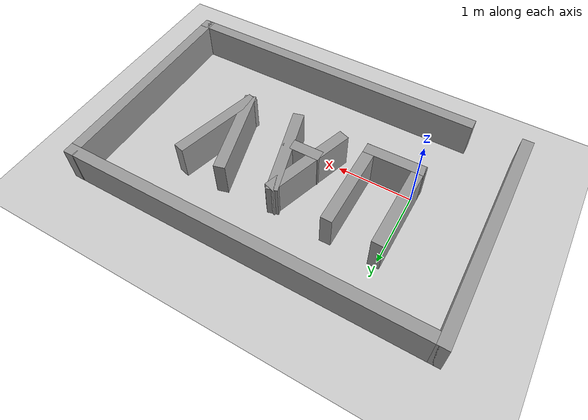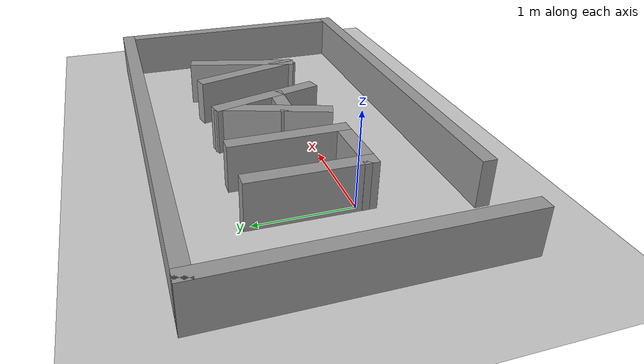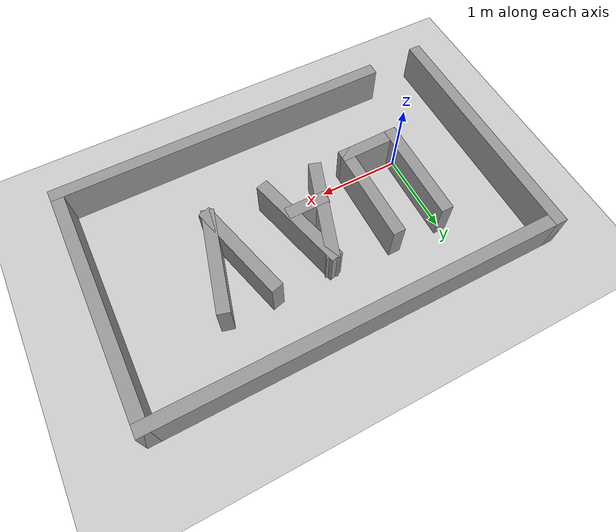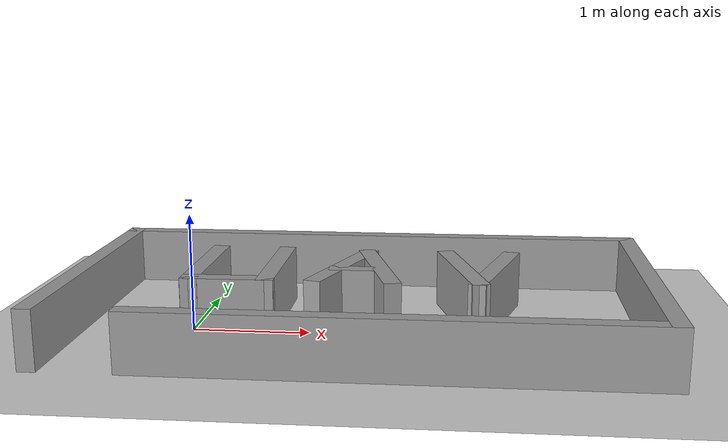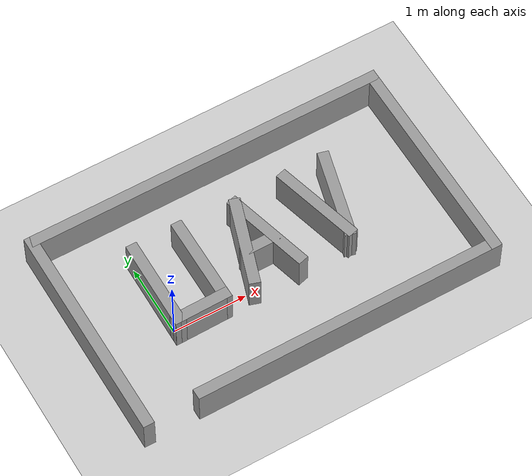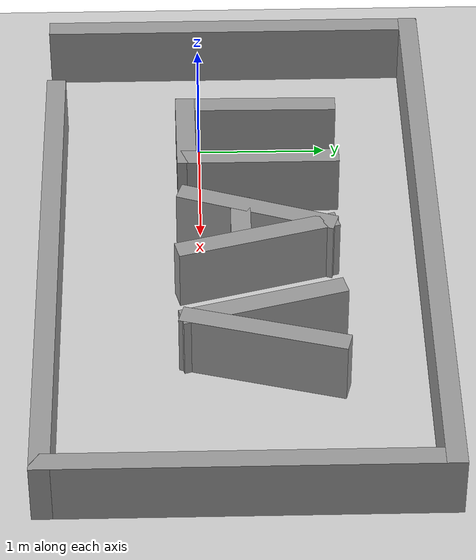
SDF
<sdf version="1.7">
 <world name="default">
  <light name="sun" type="directional">
   <pose>0 0 10 0 -0 0</pose>
   <diffuse>0.8 0.8 0.8 1</diffuse>
   <specular>0.2 0.2 0.2 1</specular>
   <attenuation>
    <range>1000</range>
    <constant>0.9</constant>
    <linear>0.01</linear>
    <quadratic>0.001</quadratic>
   </attenuation>
   <direction>-0.5 0.1 -0.9</direction>
   <spot><inner_angle>0</inner_angle><outer_angle>0</outer_angle><falloff>0</falloff></spot>
  </light>
  <model name="ground_plane">
   <static>1</static>
   <link name="link">
    <collision name="collision">
     <geometry><plane><normal>0 0 1</normal><size>100 100</size></plane></geometry>
     <surface>
      <contact><collide_bitmask>65535</collide_bitmask></contact>
      <friction><ode><mu>100</mu><mu2>50</mu2></ode></friction>
     </surface>
    </collision>
    <visual name="visual">
     <cast_shadows>0</cast_shadows>
     <geometry><plane><normal>0 0 1</normal><size>100 100</size></plane></geometry>
     <material>
      <script><uri>file://media/materials/scripts/gazebo.material</uri><name>Gazebo/Grey</name></script>
     </material>
    </visual>
   </link>
  </model>
  <gravity>0 0 -9.8</gravity>
  <magnetic_field>6e-06 2.3e-05 -4.2e-05</magnetic_field>
  <atmosphere type="adiabatic"/>
  <physics type="ode">
   <max_step_size>0.001</max_step_size>
   <real_time_factor>1</real_time_factor>
   <real_time_update_rate>1000</real_time_update_rate>
  </physics>
  <scene><ambient>0.4 0.4 0.4 1</ambient><background>0.7 0.7 0.7 1</background><shadows>1</shadows></scene>
  <spherical_coordinates>
   <surface_model>EARTH_WGS84</surface_model>
   <latitude_deg>0</latitude_deg>
   <longitude_deg>0</longitude_deg>
   <elevation>0</elevation>
   <heading_deg>0</heading_deg>
  </spherical_coordinates>
  <model name="waze_uav">
   <pose>1.423 0.297 0 0 -0 0</pose>
   <link name="Wall_0">
    <collision name="Wall_0_Collision">
     <geometry><box><size>3 0.15 0.5</size></box></geometry>
     <pose>0 0 0.25 0 -0 0</pose>
    </collision>
    <visual name="Wall_0_Visual">
     <pose>0 0 0.25 0 -0 0</pose>
     <geometry><box><size>3 0.15 0.5</size></box></geometry>
     <material>
      <script><uri>file://media/materials/scripts/gazebo.material</uri><name>Gazebo/Grey</name></script>
      <ambient>1 1 1 1</ambient>
     </material>
     <meta><layer>0</layer></meta>
    </visual>
    <pose>-2.425 0 0 0 -0 1.5708</pose>
   </link>
   <link name="Wall_11">
    <collision name="Wall_11_Collision">
     <geometry><box><size>1.26005 0.15 0.5</size></box></geometry>
     <pose>0 0 0.25 0 -0 0</pose>
    </collision>
    <visual name="Wall_11_Visual">
     <pose>0 0 0.25 0 -0 0</pose>
     <geometry><box><size>1.26005 0.15 0.5</size></box></geometry>
     <material>
      <script><uri>file://media/materials/scripts/gazebo.material</uri><name>Gazebo/Grey</name></script>
      <ambient>1 1 1 1</ambient>
     </material>
     <meta><layer>0</layer></meta>
    </visual>
    <pose>-1.409 0.151 0 0 -0 1.56179</pose>
   </link>
   <link name="Wall_13">
    <collision name="Wall_13_Collision">
     <geometry><box><size>0.790078 0.15 0.5</size></box></geometry>
     <pose>0 0 0.25 0 -0 0</pose>
    </collision>
    <visual name="Wall_13_Visual">
     <pose>0 0 0.25 0 -0 0</pose>
     <geometry><box><size>0.790078 0.15 0.5</size></box></geometry>
     <material>
      <script><uri>file://media/materials/scripts/gazebo.material</uri><name>Gazebo/Grey</name></script>
      <ambient>1 1 1 1</ambient>
     </material>
     <meta><layer>0</layer></meta>
    </visual>
    <pose>-1.094 -0.399 0 0 -0 0.015624</pose>
   </link>
   <link name="Wall_14">
    <collision name="Wall_14_Collision">
     <geometry><box><size>1.25 0.15 0.5</size></box></geometry>
     <pose>0 0 0.25 0 -0 0</pose>
    </collision>
    <visual name="Wall_14_Visual">
     <pose>0 0 0.25 0 -0 0</pose>
     <geometry><box><size>1.25 0.15 0.5</size></box></geometry>
     <material>
      <script><uri>file://media/materials/scripts/gazebo.material</uri><name>Gazebo/Grey</name></script>
      <ambient>1 1 1 1</ambient>
     </material>
     <meta><layer>0</layer></meta>
    </visual>
    <pose>-0.774 0.156 0 0 -0 1.5708</pose>
   </link>
   <link name="Wall_16">
    <collision name="Wall_16_Collision">
     <geometry><box><size>1.23909 0.15 0.5</size></box></geometry>
     <pose>0 0 0.25 0 -0 0</pose>
    </collision>
    <visual name="Wall_16_Visual">
     <pose>0 0 0.25 0 -0 0</pose>
     <geometry><box><size>1.23909 0.15 0.5</size></box></geometry>
     <material>
      <script><uri>file://media/materials/scripts/gazebo.material</uri><name>Gazebo/Grey</name></script>
      <ambient>1 1 1 1</ambient>
     </material>
     <meta><layer>0</layer></meta>
    </visual>
    <pose>-0.1815 0.1325 0 0 -0 1.24846</pose>
   </link>
   <link name="Wall_17">
    <collision name="Wall_17_Collision">
     <geometry><box><size>1.25054 0.15 0.5</size></box></geometry>
     <pose>0 0 0.25 0 -0 0</pose>
    </collision>
    <visual name="Wall_17_Visual">
     <pose>0 0 0.25 0 -0 0</pose>
     <geometry><box><size>1.25054 0.15 0.5</size></box></geometry>
     <material>
      <script><uri>file://media/materials/scripts/gazebo.material</uri><name>Gazebo/Grey</name></script>
      <ambient>1 1 1 1</ambient>
     </material>
     <meta><layer>0</layer></meta>
    </visual>
    <pose>0.1335 0.1275 0 0 -0 -1.30885</pose>
   </link>
   <link name="Wall_19">
    <collision name="Wall_19_Collision">
     <geometry><box><size>0.5 0.15 0.5</size></box></geometry>
     <pose>0 0 0.25 0 -0 0</pose>
    </collision>
    <visual name="Wall_19_Visual">
     <pose>0 0 0.25 0 -0 0</pose>
     <geometry><box><size>0.5 0.15 0.5</size></box></geometry>
     <material>
      <script><uri>file://media/materials/scripts/gazebo.material</uri><name>Gazebo/Grey</name></script>
      <ambient>1 1 1 1</ambient>
     </material>
     <meta><layer>0</layer></meta>
    </visual>
    <pose>-0.039 0.006 0 0 -0 0</pose>
   </link>
   <link name="Wall_2">
    <collision name="Wall_2_Collision">
     <geometry><box><size>5 0.15 0.5</size></box></geometry>
     <pose>0 0 0.25 0 -0 0</pose>
    </collision>
    <visual name="Wall_2_Visual">
     <pose>0 0 0.25 0 -0 0</pose>
     <geometry><box><size>5 0.15 0.5</size></box></geometry>
     <material>
      <script><uri>file://media/materials/scripts/gazebo.material</uri><name>Gazebo/Grey</name></script>
      <ambient>1 1 1 1</ambient>
     </material>
     <meta><layer>0</layer></meta>
    </visual>
    <pose>-0 1.425 0 0 -0 0</pose>
   </link>
   <link name="Wall_21">
    <collision name="Wall_21_Collision">
     <geometry><box><size>1.25 0.15 0.5</size></box></geometry>
     <pose>0 0 0.25 0 -0 0</pose>
    </collision>
    <visual name="Wall_21_Visual">
     <pose>0 0 0.25 0 -0 0</pose>
     <geometry><box><size>1.25 0.15 0.5</size></box></geometry>
     <material>
      <script><uri>file://media/materials/scripts/gazebo.material</uri><name>Gazebo/Grey</name></script>
      <ambient>1 1 1 1</ambient>
     </material>
     <meta><layer>0</layer></meta>
    </visual>
    <pose>0.8585 0.155 0 0 -0 -1.30861</pose>
   </link>
   <link name="Wall_22">
    <collision name="Wall_22_Collision">
     <geometry><box><size>1.25 0.15 0.5</size></box></geometry>
     <pose>0 0 0.25 0 -0 0</pose>
    </collision>
    <visual name="Wall_22_Visual">
     <pose>0 0 0.25 0 -0 0</pose>
     <geometry><box><size>1.25 0.15 0.5</size></box></geometry>
     <material>
      <script><uri>file://media/materials/scripts/gazebo.material</uri><name>Gazebo/Grey</name></script>
      <ambient>1 1 1 1</ambient>
     </material>
     <meta><layer>0</layer></meta>
    </visual>
    <pose>1.1435 0.155 0 0 -0 1.30861</pose>
   </link>
   <link name="Wall_4">
    <collision name="Wall_4_Collision">
     <geometry><box><size>3 0.15 0.5</size></box></geometry>
     <pose>0 0 0.25 0 -0 0</pose>
    </collision>
    <visual name="Wall_4_Visual">
     <pose>0 0 0.25 0 -0 0</pose>
     <geometry><box><size>3 0.15 0.5</size></box></geometry>
     <material>
      <script><uri>file://media/materials/scripts/gazebo.material</uri><name>Gazebo/Grey</name></script>
      <ambient>1 1 1 1</ambient>
     </material>
     <meta><layer>0</layer></meta>
    </visual>
    <pose>2.425 0 0 0 -0 -1.5708</pose>
   </link>
   <link name="Wall_5">
    <collision name="Wall_5_Collision">
     <geometry><box><size>4.25 0.15 0.5</size></box></geometry>
     <pose>0 0 0.25 0 -0 0</pose>
    </collision>
    <visual name="Wall_5_Visual">
     <pose>0 0 0.25 0 -0 0</pose>
     <geometry><box><size>4.25 0.15 0.5</size></box></geometry>
     <material>
      <script><uri>file://media/materials/scripts/gazebo.material</uri><name>Gazebo/Grey</name></script>
      <ambient>1 1 1 1</ambient>
     </material>
     <meta><layer>0</layer></meta>
    </visual>
    <pose>0.375 -1.425 0 0 -0 3.14159</pose>
   </link>
   <static>1</static>
  </model>
 </world>
</sdf>
